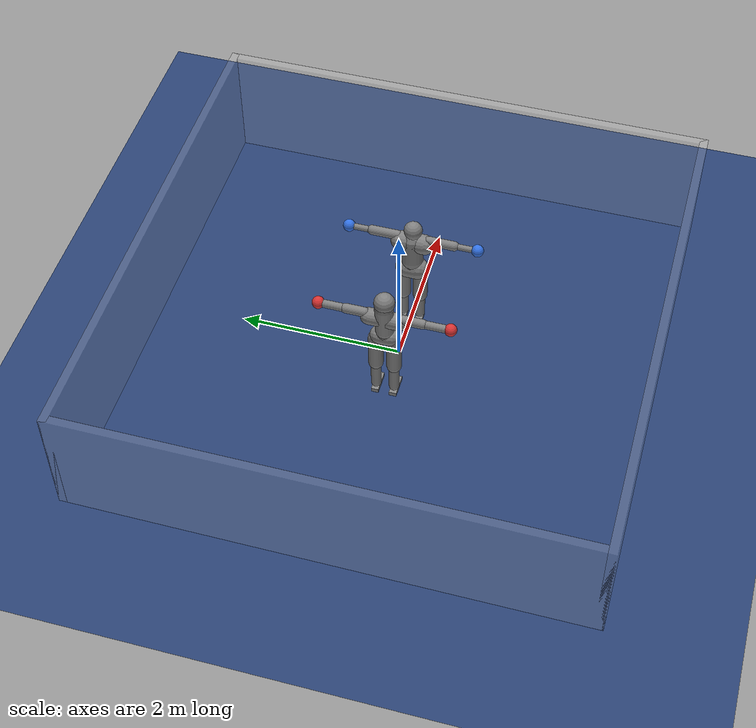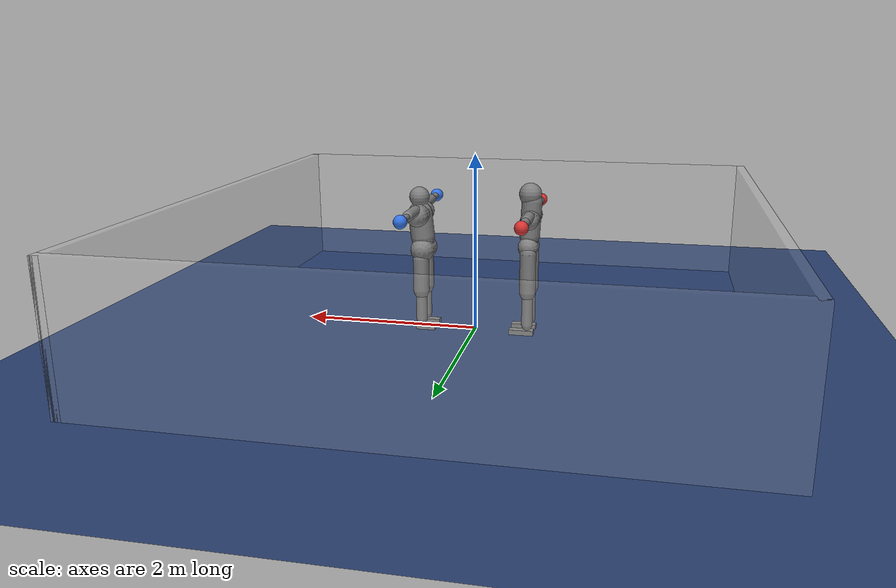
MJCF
<mujoco model="trump_vs_grandpa_spar">
  <compiler angle="degree" inertiafromgeom="true" autolimits="true"/>
  <option timestep="0.005" iterations="10" ls_iterations="10" integrator="implicitfast">
    <flag eulerdamp="disable"/>
  </option>
  <default>
    <geom contype="1" conaffinity="1" condim="3" friction="1.0 0.005 0.0001" density="1000" margin="0"/>
    <joint limited="true"/>
    <position ctrllimited="true"/>
  </default>
  <asset>
    <texture name="grid" type="2d" builtin="checker" rgb1=".18 .28 .48" rgb2=".14 .22 .40" width="300" height="300"/>
    <material name="grid" texture="grid" texrepeat="6 6" reflectance="0"/>
  </asset>
  <worldbody>
    <light pos="0 0 5" dir="0 0 -1" directional="true"/>
    <geom name="floor" type="plane" size="0 0 0.05" material="grid" friction="1.0 0.005 0.0001"/>
    <geom name="rope_n" type="box" pos="0.0000 3.1000 0.7500" size="3.1500 0.0500 0.7500" rgba="0.8 0.8 0.8 0.15"/>
    <geom name="rope_s" type="box" pos="0.0000 -3.1000 0.7500" size="3.1500 0.0500 0.7500" rgba="0.8 0.8 0.8 0.15"/>
    <geom name="rope_e" type="box" pos="3.1000 0.0000 0.7500" size="0.0500 3.1500 0.7500" rgba="0.8 0.8 0.8 0.15"/>
    <geom name="rope_w" type="box" pos="-3.1000 0.0000 0.7500" size="0.0500 3.1500 0.7500" rgba="0.8 0.8 0.8 0.15"/>
    <body name="a_pelvis" pos="-0.6000 0.0000 0.9982" quat="1.00000 0 0 0.00000">
      <freejoint name="a_root"/>
      <geom name="a_pelvis_geom" type="capsule" fromto="0.0000 -0.0700 0.0000 0.0000 0.0700 0.0000" size="0.1121" mass="9.6630" />
      <geom name="a_pelvis_up" type="capsule" fromto="0.0000 0.0000 0.0000 -0.0074 0.0000 0.0765" size="0.1009" mass="5.7156" />
      <body name="a_torso" pos="-0.0074 0.0000 0.0965">
        <joint name="a_abdomen_z" type="hinge" axis="0 0 1" range="-45 45" damping="0.5" armature="0.08" stiffness="0"/>
        <joint name="a_abdomen_y" type="hinge" axis="0 1 0" range="-60 30" damping="0.5" armature="0.08" stiffness="0"/>
        <joint name="a_abdomen_x" type="hinge" axis="1 0 0" range="-35 35" damping="0.5" armature="0.08" stiffness="0"/>
        <geom name="a_torso_geom" type="capsule" fromto="0.0000 0.0000 0.0200 -0.0223 0.0000 0.4131" size="0.1121" mass="38.4465" />
        <geom name="a_chest_geom" type="capsule" fromto="-0.0178 -0.1841 0.2257 -0.0178 0.1841 0.2257" size="0.1009" mass="0.5"/>
        <geom name="a_head_geom" type="sphere" pos="-0.0037 0.0000 0.4861" size="0.1250" mass="8.7723" />
        <body name="a_upper_arm_l" pos="-0.0223 0.2301 0.2821">
          <joint name="a_shoulder_x_l" type="hinge" axis="1 0 0" range="-170 30" damping="0.5" armature="0.03" stiffness="0"/>
          <joint name="a_shoulder_z_l" type="hinge" axis="0 0 1" range="-110 110" damping="0.5" armature="0.03" stiffness="0"/>
          <geom name="a_upper_arm_l_geom" type="capsule" fromto="0.0000 0.0000 0.0000 0.0000 0.2324 0.0000" size="0.0580" mass="3.0324" />
          <body name="a_forearm_l" pos="0.0000 0.2324 0.0000">
            <joint name="a_elbow_l" type="hinge" axis="0 0 1" range="-150 0" damping="0.5" armature="0.02" stiffness="0"/>
            <geom name="a_forearm_l_geom" type="capsule" fromto="0.0000 0.0000 0.0000 0.0000 0.2561 0.0000" size="0.0480" mass="1.7328" />
            <geom name="a_glove_l" type="sphere" pos="0.0000 0.3236 0.0000" size="0.0750" mass="0.9328" rgba="0.85 0.2 0.2 1"/>
          </body>
        </body>
        <body name="a_upper_arm_r" pos="-0.0223 -0.2301 0.2821">
          <joint name="a_shoulder_x_r" type="hinge" axis="1 0 0" range="-30 170" damping="0.5" armature="0.03" stiffness="0"/>
          <joint name="a_shoulder_z_r" type="hinge" axis="0 0 1" range="-110 110" damping="0.5" armature="0.03" stiffness="0"/>
          <geom name="a_upper_arm_r_geom" type="capsule" fromto="0.0000 0.0000 0.0000 0.0000 -0.2324 0.0000" size="0.0580" mass="3.0324" />
          <body name="a_forearm_r" pos="0.0000 -0.2324 0.0000">
            <joint name="a_elbow_r" type="hinge" axis="0 0 1" range="0 150" damping="0.5" armature="0.02" stiffness="0"/>
            <geom name="a_forearm_r_geom" type="capsule" fromto="0.0000 0.0000 0.0000 0.0000 -0.2561 0.0000" size="0.0480" mass="1.7328" />
            <geom name="a_glove_r" type="sphere" pos="0.0000 -0.3236 0.0000" size="0.0750" mass="0.9328" rgba="0.85 0.2 0.2 1"/>
          </body>
        </body>
      </body>
      <body name="a_thigh_l" pos="-0.0074 0.1113 -0.0593">
        <joint name="a_hip_x_l" type="hinge" axis="1 0 0" range="-40 40" damping="0.5" armature="0.1" stiffness="0"/>
        <joint name="a_hip_z_l" type="hinge" axis="0 0 1" range="-35 35" damping="0.5" armature="0.1" stiffness="0"/>
        <joint name="a_hip_y_l" type="hinge" axis="0 1 0" range="-120 30" damping="0.5" armature="0.1" stiffness="0"/>
        <geom name="a_thigh_l_geom" type="capsule" fromto="0.0000 0.0000 0.0000 0.0000 0.0000 -0.4454" size="0.0900" mass="10.8300" />
        <body name="a_shin_l" pos="0.0000 0.0000 -0.4454">
          <joint name="a_knee_l" type="hinge" axis="0 1 0" range="0 150" damping="0.5" armature="0.1" stiffness="0"/>
          <geom name="a_shin_l_geom" type="capsule" fromto="0.0000 0.0000 0.0000 0.0000 0.0000 -0.3790" size="0.0620" mass="5.0359" />
          <body name="a_foot_l" pos="0.0000 0.0000 -0.3790">
            <joint name="a_ankle_y_l" type="hinge" axis="0 1 0" range="-20 50" damping="0.5" armature="0.03" stiffness="0"/>
            <joint name="a_ankle_x_l" type="hinge" axis="1 0 0" range="-25 25" damping="0.5" armature="0.03" stiffness="0"/>
            <geom name="a_foot_l_geom" type="box" pos="0.0627 0.0000 -0.0870" size="0.1363 0.0450 0.0280" mass="1.5704" friction="1.0 0.005 0.0001"/>
            <site name="a_foot_l_site" pos="0.0627 0.0000 -0.0870" size="0.01"/>
          </body>
        </body>
      </body>
      <body name="a_thigh_r" pos="-0.0074 -0.1113 -0.0593">
        <joint name="a_hip_x_r" type="hinge" axis="1 0 0" range="-40 40" damping="0.5" armature="0.1" stiffness="0"/>
        <joint name="a_hip_z_r" type="hinge" axis="0 0 1" range="-35 35" damping="0.5" armature="0.1" stiffness="0"/>
        <joint name="a_hip_y_r" type="hinge" axis="0 1 0" range="-120 30" damping="0.5" armature="0.1" stiffness="0"/>
        <geom name="a_thigh_r_geom" type="capsule" fromto="0.0000 0.0000 0.0000 0.0000 0.0000 -0.4454" size="0.0900" mass="10.8300" />
        <body name="a_shin_r" pos="0.0000 0.0000 -0.4454">
          <joint name="a_knee_r" type="hinge" axis="0 1 0" range="0 150" damping="0.5" armature="0.1" stiffness="0"/>
          <geom name="a_shin_r_geom" type="capsule" fromto="0.0000 0.0000 0.0000 0.0000 0.0000 -0.3790" size="0.0620" mass="5.0359" />
          <body name="a_foot_r" pos="0.0000 0.0000 -0.3790">
            <joint name="a_ankle_y_r" type="hinge" axis="0 1 0" range="-20 50" damping="0.5" armature="0.03" stiffness="0"/>
            <joint name="a_ankle_x_r" type="hinge" axis="1 0 0" range="-25 25" damping="0.5" armature="0.03" stiffness="0"/>
            <geom name="a_foot_r_geom" type="box" pos="0.0627 0.0000 -0.0870" size="0.1363 0.0450 0.0280" mass="1.5704" friction="1.0 0.005 0.0001"/>
            <site name="a_foot_r_site" pos="0.0627 0.0000 -0.0870" size="0.01"/>
          </body>
        </body>
      </body>
    </body>
    <body name="b_pelvis" pos="0.6000 0.0000 0.9146" quat="0.00000 0 0 1.00000">
      <freejoint name="b_root"/>
      <geom name="b_pelvis_geom" type="capsule" fromto="0.0000 -0.0700 0.0000 0.0000 0.0700 0.0000" size="0.1350" mass="6.7965" />
      <geom name="b_pelvis_up" type="capsule" fromto="0.0000 0.0000 0.0000 -0.0099 0.0000 0.0920" size="0.1215" mass="4.3789" />
      <body name="b_torso" pos="-0.0099 0.0000 0.1120">
        <joint name="b_abdomen_z" type="hinge" axis="0 0 1" range="-45 45" damping="0.5" armature="0.08" stiffness="0"/>
        <joint name="b_abdomen_y" type="hinge" axis="0 1 0" range="-60 30" damping="0.5" armature="0.08" stiffness="0"/>
        <joint name="b_abdomen_x" type="hinge" axis="1 0 0" range="-35 35" damping="0.5" armature="0.08" stiffness="0"/>
        <geom name="b_torso_geom" type="capsule" fromto="0.0000 0.0000 0.0200 -0.0268 0.0000 0.2932" size="0.1350" mass="27.9385" />
        <geom name="b_chest_geom" type="capsule" fromto="-0.0230 -0.1505 0.2866 -0.0230 0.1505 0.2866" size="0.1215" mass="0.5"/>
        <geom name="b_head_geom" type="sphere" pos="-0.0325 0.0000 0.4807" size="0.1127" mass="6.3747" />
        <body name="b_upper_arm_l" pos="-0.0287 0.1881 0.3582">
          <joint name="b_shoulder_x_l" type="hinge" axis="1 0 0" range="-170 30" damping="0.5" armature="0.03" stiffness="0"/>
          <joint name="b_shoulder_z_l" type="hinge" axis="0 0 1" range="-110 110" damping="0.5" armature="0.03" stiffness="0"/>
          <geom name="b_upper_arm_l_geom" type="capsule" fromto="0.0000 0.0000 0.0000 0.0000 0.3197 0.0000" size="0.0580" mass="2.2036" />
          <body name="b_forearm_l" pos="0.0000 0.3197 0.0000">
            <joint name="b_elbow_l" type="hinge" axis="0 0 1" range="-150 0" damping="0.5" armature="0.02" stiffness="0"/>
            <geom name="b_forearm_l_geom" type="capsule" fromto="0.0000 0.0000 0.0000 0.0000 0.2162 0.0000" size="0.0373" mass="1.2592" />
            <geom name="b_glove_l" type="sphere" pos="0.0000 0.2837 0.0000" size="0.0750" mass="0.7552" rgba="0.2 0.45 0.9 1"/>
          </body>
        </body>
        <body name="b_upper_arm_r" pos="-0.0287 -0.1881 0.3582">
          <joint name="b_shoulder_x_r" type="hinge" axis="1 0 0" range="-30 170" damping="0.5" armature="0.03" stiffness="0"/>
          <joint name="b_shoulder_z_r" type="hinge" axis="0 0 1" range="-110 110" damping="0.5" armature="0.03" stiffness="0"/>
          <geom name="b_upper_arm_r_geom" type="capsule" fromto="0.0000 0.0000 0.0000 0.0000 -0.3197 0.0000" size="0.0580" mass="2.2036" />
          <body name="b_forearm_r" pos="0.0000 -0.3197 0.0000">
            <joint name="b_elbow_r" type="hinge" axis="0 0 1" range="0 150" damping="0.5" armature="0.02" stiffness="0"/>
            <geom name="b_forearm_r_geom" type="capsule" fromto="0.0000 0.0000 0.0000 0.0000 -0.2162 0.0000" size="0.0373" mass="1.2592" />
            <geom name="b_glove_r" type="sphere" pos="0.0000 -0.2837 0.0000" size="0.0750" mass="0.7552" rgba="0.2 0.45 0.9 1"/>
          </body>
        </body>
      </body>
      <body name="b_thigh_l" pos="-0.0082 0.1049 -0.0932">
        <joint name="b_hip_x_l" type="hinge" axis="1 0 0" range="-40 40" damping="0.5" armature="0.1" stiffness="0"/>
        <joint name="b_hip_z_l" type="hinge" axis="0 0 1" range="-35 35" damping="0.5" armature="0.1" stiffness="0"/>
        <joint name="b_hip_y_l" type="hinge" axis="0 1 0" range="-120 30" damping="0.5" armature="0.1" stiffness="0"/>
        <geom name="b_thigh_l_geom" type="capsule" fromto="0.0000 0.0000 0.0000 0.0000 0.0000 -0.3769" size="0.0900" mass="7.8700" />
        <body name="b_shin_l" pos="0.0000 0.0000 -0.3769">
          <joint name="b_knee_l" type="hinge" axis="0 1 0" range="0 150" damping="0.5" armature="0.1" stiffness="0"/>
          <geom name="b_shin_l_geom" type="capsule" fromto="0.0000 0.0000 0.0000 0.0000 0.0000 -0.3360" size="0.0620" mass="3.6596" />
          <body name="b_foot_l" pos="0.0000 0.0000 -0.3360">
            <joint name="b_ankle_y_l" type="hinge" axis="0 1 0" range="-20 50" damping="0.5" armature="0.03" stiffness="0"/>
            <joint name="b_ankle_x_l" type="hinge" axis="1 0 0" range="-25 25" damping="0.5" armature="0.03" stiffness="0"/>
            <geom name="b_foot_l_geom" type="box" pos="0.0506 0.0000 -0.0887" size="0.1100 0.0450 0.0280" mass="1.1412" friction="1.0 0.005 0.0001"/>
            <site name="b_foot_l_site" pos="0.0506 0.0000 -0.0887" size="0.01"/>
          </body>
        </body>
      </body>
      <body name="b_thigh_r" pos="-0.0082 -0.1049 -0.0932">
        <joint name="b_hip_x_r" type="hinge" axis="1 0 0" range="-40 40" damping="0.5" armature="0.1" stiffness="0"/>
        <joint name="b_hip_z_r" type="hinge" axis="0 0 1" range="-35 35" damping="0.5" armature="0.1" stiffness="0"/>
        <joint name="b_hip_y_r" type="hinge" axis="0 1 0" range="-120 30" damping="0.5" armature="0.1" stiffness="0"/>
        <geom name="b_thigh_r_geom" type="capsule" fromto="0.0000 0.0000 0.0000 0.0000 0.0000 -0.3769" size="0.0900" mass="7.8700" />
        <body name="b_shin_r" pos="0.0000 0.0000 -0.3769">
          <joint name="b_knee_r" type="hinge" axis="0 1 0" range="0 150" damping="0.5" armature="0.1" stiffness="0"/>
          <geom name="b_shin_r_geom" type="capsule" fromto="0.0000 0.0000 0.0000 0.0000 0.0000 -0.3360" size="0.0620" mass="3.6596" />
          <body name="b_foot_r" pos="0.0000 0.0000 -0.3360">
            <joint name="b_ankle_y_r" type="hinge" axis="0 1 0" range="-20 50" damping="0.5" armature="0.03" stiffness="0"/>
            <joint name="b_ankle_x_r" type="hinge" axis="1 0 0" range="-25 25" damping="0.5" armature="0.03" stiffness="0"/>
            <geom name="b_foot_r_geom" type="box" pos="0.0506 0.0000 -0.0887" size="0.1100 0.0450 0.0280" mass="1.1412" friction="1.0 0.005 0.0001"/>
            <site name="b_foot_r_site" pos="0.0506 0.0000 -0.0887" size="0.01"/>
          </body>
        </body>
      </body>
    </body>
  </worldbody>
  <contact>
    <exclude body1="a_pelvis" body2="a_torso"/>
    <exclude body1="a_pelvis" body2="a_thigh_l"/>
    <exclude body1="a_thigh_l" body2="a_shin_l"/>
    <exclude body1="a_shin_l" body2="a_foot_l"/>
    <exclude body1="a_torso" body2="a_upper_arm_l"/>
    <exclude body1="a_upper_arm_l" body2="a_forearm_l"/>
    <exclude body1="a_pelvis" body2="a_thigh_r"/>
    <exclude body1="a_thigh_r" body2="a_shin_r"/>
    <exclude body1="a_shin_r" body2="a_foot_r"/>
    <exclude body1="a_torso" body2="a_upper_arm_r"/>
    <exclude body1="a_upper_arm_r" body2="a_forearm_r"/>
    <exclude body1="b_pelvis" body2="b_torso"/>
    <exclude body1="b_pelvis" body2="b_thigh_l"/>
    <exclude body1="b_thigh_l" body2="b_shin_l"/>
    <exclude body1="b_shin_l" body2="b_foot_l"/>
    <exclude body1="b_torso" body2="b_upper_arm_l"/>
    <exclude body1="b_upper_arm_l" body2="b_forearm_l"/>
    <exclude body1="b_pelvis" body2="b_thigh_r"/>
    <exclude body1="b_thigh_r" body2="b_shin_r"/>
    <exclude body1="b_shin_r" body2="b_foot_r"/>
    <exclude body1="b_torso" body2="b_upper_arm_r"/>
    <exclude body1="b_upper_arm_r" body2="b_forearm_r"/>
  </contact>
  <actuator>
    <position name="a_abdomen_z" joint="a_abdomen_z" kp="495.9" kv="23.142" forcerange="-187.34 187.34" ctrlrange="-0.7854 0.7854"/>
    <position name="a_abdomen_y" joint="a_abdomen_y" kp="495.9" kv="23.142" forcerange="-187.34 187.34" ctrlrange="-1.0472 0.5236"/>
    <position name="a_abdomen_x" joint="a_abdomen_x" kp="495.9" kv="23.142" forcerange="-187.34 187.34" ctrlrange="-0.6109 0.6109"/>
    <position name="a_shoulder_x_l" joint="a_shoulder_x_l" kp="176.32" kv="8.816" forcerange="-110.2 110.2" ctrlrange="-2.9671 0.5236"/>
    <position name="a_shoulder_z_l" joint="a_shoulder_z_l" kp="176.32" kv="8.816" forcerange="-110.2 110.2" ctrlrange="-1.9199 1.9199"/>
    <position name="a_elbow_l" joint="a_elbow_l" kp="121.22" kv="6.061" forcerange="-77.14 77.14" ctrlrange="-2.6180 0.0000"/>
    <position name="a_shoulder_x_r" joint="a_shoulder_x_r" kp="176.32" kv="8.816" forcerange="-110.2 110.2" ctrlrange="-0.5236 2.9671"/>
    <position name="a_shoulder_z_r" joint="a_shoulder_z_r" kp="176.32" kv="8.816" forcerange="-110.2 110.2" ctrlrange="-1.9199 1.9199"/>
    <position name="a_elbow_r" joint="a_elbow_r" kp="121.22" kv="6.061" forcerange="-77.14 77.14" ctrlrange="0.0000 2.6180"/>
    <position name="a_hip_x_l" joint="a_hip_x_l" kp="661.2" kv="33.06" forcerange="-264.48 264.48" ctrlrange="-0.6981 0.6981"/>
    <position name="a_hip_z_l" joint="a_hip_z_l" kp="661.2" kv="33.06" forcerange="-264.48 264.48" ctrlrange="-0.6109 0.6109"/>
    <position name="a_hip_y_l" joint="a_hip_y_l" kp="661.2" kv="33.06" forcerange="-264.48 264.48" ctrlrange="-2.0944 0.5236"/>
    <position name="a_knee_l" joint="a_knee_l" kp="661.2" kv="33.06" forcerange="-286.52 286.52" ctrlrange="0.0000 2.6180"/>
    <position name="a_ankle_y_l" joint="a_ankle_y_l" kp="826.5" kv="33.06" forcerange="-242.44 242.44" ctrlrange="-0.3491 0.8727"/>
    <position name="a_ankle_x_l" joint="a_ankle_x_l" kp="88.16" kv="4.408" forcerange="-66.12 66.12" ctrlrange="-0.4363 0.4363"/>
    <position name="a_hip_x_r" joint="a_hip_x_r" kp="661.2" kv="33.06" forcerange="-264.48 264.48" ctrlrange="-0.6981 0.6981"/>
    <position name="a_hip_z_r" joint="a_hip_z_r" kp="661.2" kv="33.06" forcerange="-264.48 264.48" ctrlrange="-0.6109 0.6109"/>
    <position name="a_hip_y_r" joint="a_hip_y_r" kp="661.2" kv="33.06" forcerange="-264.48 264.48" ctrlrange="-2.0944 0.5236"/>
    <position name="a_knee_r" joint="a_knee_r" kp="661.2" kv="33.06" forcerange="-286.52 286.52" ctrlrange="0.0000 2.6180"/>
    <position name="a_ankle_y_r" joint="a_ankle_y_r" kp="826.5" kv="33.06" forcerange="-242.44 242.44" ctrlrange="-0.3491 0.8727"/>
    <position name="a_ankle_x_r" joint="a_ankle_x_r" kp="88.16" kv="4.408" forcerange="-66.12 66.12" ctrlrange="-0.4363 0.4363"/>
    <position name="b_abdomen_z" joint="b_abdomen_z" kp="216.45" kv="10.101" forcerange="-81.77 81.77" ctrlrange="-0.7854 0.7854"/>
    <position name="b_abdomen_y" joint="b_abdomen_y" kp="216.45" kv="10.101" forcerange="-81.77 81.77" ctrlrange="-1.0472 0.5236"/>
    <position name="b_abdomen_x" joint="b_abdomen_x" kp="216.45" kv="10.101" forcerange="-81.77 81.77" ctrlrange="-0.6109 0.6109"/>
    <position name="b_shoulder_x_l" joint="b_shoulder_x_l" kp="76.96" kv="3.848" forcerange="-48.1 48.1" ctrlrange="-2.9671 0.5236"/>
    <position name="b_shoulder_z_l" joint="b_shoulder_z_l" kp="76.96" kv="3.848" forcerange="-48.1 48.1" ctrlrange="-1.9199 1.9199"/>
    <position name="b_elbow_l" joint="b_elbow_l" kp="52.91" kv="2.645" forcerange="-33.67 33.67" ctrlrange="-2.6180 0.0000"/>
    <position name="b_shoulder_x_r" joint="b_shoulder_x_r" kp="76.96" kv="3.848" forcerange="-48.1 48.1" ctrlrange="-0.5236 2.9671"/>
    <position name="b_shoulder_z_r" joint="b_shoulder_z_r" kp="76.96" kv="3.848" forcerange="-48.1 48.1" ctrlrange="-1.9199 1.9199"/>
    <position name="b_elbow_r" joint="b_elbow_r" kp="52.91" kv="2.645" forcerange="-33.67 33.67" ctrlrange="0.0000 2.6180"/>
    <position name="b_hip_x_l" joint="b_hip_x_l" kp="288.6" kv="14.43" forcerange="-115.44 115.44" ctrlrange="-0.6981 0.6981"/>
    <position name="b_hip_z_l" joint="b_hip_z_l" kp="288.6" kv="14.43" forcerange="-115.44 115.44" ctrlrange="-0.6109 0.6109"/>
    <position name="b_hip_y_l" joint="b_hip_y_l" kp="288.6" kv="14.43" forcerange="-115.44 115.44" ctrlrange="-2.0944 0.5236"/>
    <position name="b_knee_l" joint="b_knee_l" kp="288.6" kv="14.43" forcerange="-125.06 125.06" ctrlrange="0.0000 2.6180"/>
    <position name="b_ankle_y_l" joint="b_ankle_y_l" kp="360.75" kv="14.43" forcerange="-105.82 105.82" ctrlrange="-0.3491 0.8727"/>
    <position name="b_ankle_x_l" joint="b_ankle_x_l" kp="38.48" kv="1.924" forcerange="-28.86 28.86" ctrlrange="-0.4363 0.4363"/>
    <position name="b_hip_x_r" joint="b_hip_x_r" kp="288.6" kv="14.43" forcerange="-115.44 115.44" ctrlrange="-0.6981 0.6981"/>
    <position name="b_hip_z_r" joint="b_hip_z_r" kp="288.6" kv="14.43" forcerange="-115.44 115.44" ctrlrange="-0.6109 0.6109"/>
    <position name="b_hip_y_r" joint="b_hip_y_r" kp="288.6" kv="14.43" forcerange="-115.44 115.44" ctrlrange="-2.0944 0.5236"/>
    <position name="b_knee_r" joint="b_knee_r" kp="288.6" kv="14.43" forcerange="-125.06 125.06" ctrlrange="0.0000 2.6180"/>
    <position name="b_ankle_y_r" joint="b_ankle_y_r" kp="360.75" kv="14.43" forcerange="-105.82 105.82" ctrlrange="-0.3491 0.8727"/>
    <position name="b_ankle_x_r" joint="b_ankle_x_r" kp="38.48" kv="1.924" forcerange="-28.86 28.86" ctrlrange="-0.4363 0.4363"/>
  </actuator>
  <keyframe>
    <key name="stand" qpos="-0.6000 0.0000 0.9790 1.00000 0 0 0.00000 0.0000 0.0000 0.0000 -1.3265 -0.7330 -1.9548 1.3265 0.7330 1.9548 0.0000 0.0000 -0.1656 0.4538 -0.2882 0.0000 0.0000 0.0000 -0.1656 0.4538 -0.2882 0.0000 0.6000 0.0000 0.9062 0.00000 0 0 1.00000 0.0000 0.0000 0.0000 -1.3265 -0.7330 -1.9548 1.3265 0.7330 1.9548 0.0000 0.0000 -0.1782 0.4538 -0.2756 0.0000 0.0000 0.0000 -0.1782 0.4538 -0.2756 0.0000"/>
  </keyframe>
</mujoco>
